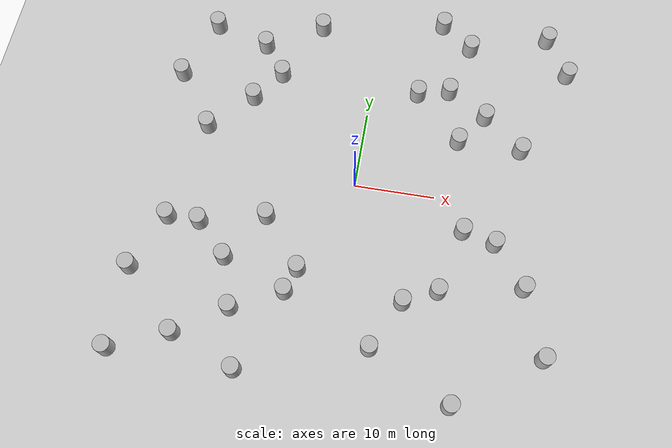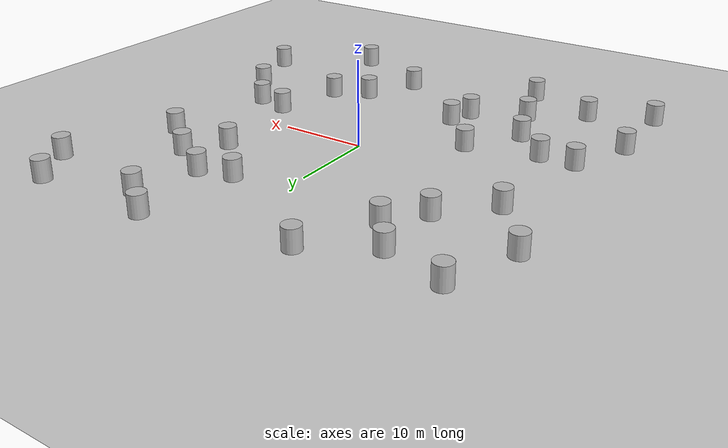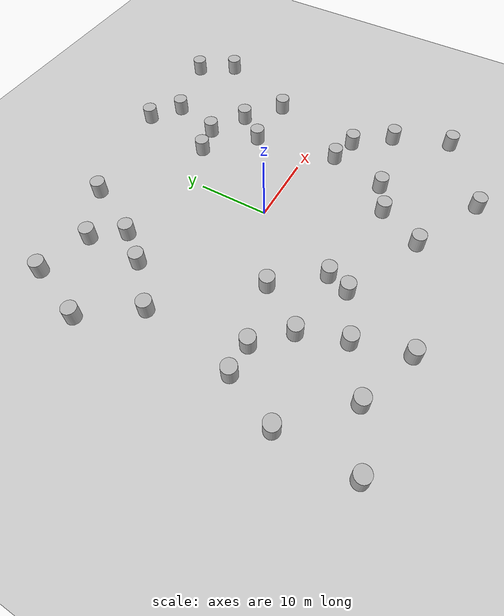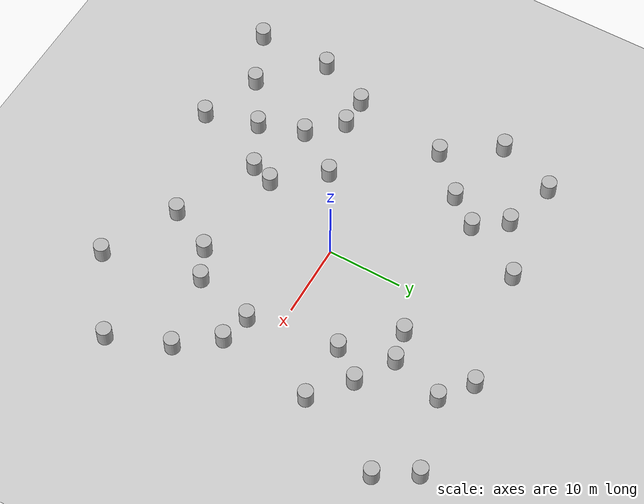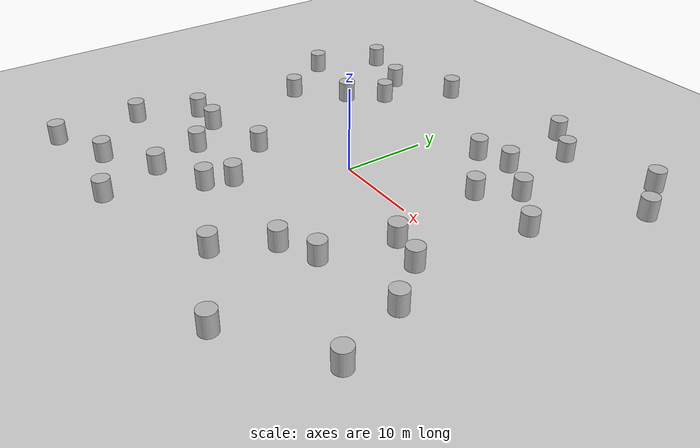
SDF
<?xml version='1.0'?>
<sdf version='1.9'>
  <world name='larger_cylinders'>
    <model name="ground_plane">
      <static>true</static>
      <link name="ground_plane_link">
        <collision name="collision">
          <geometry>
            <plane>
              <normal>0 0 1</normal>
              <size>60 60</size>
            </plane>
          </geometry>
        </collision>
        <visual name="visual">
          <geometry>
            <plane>
              <normal>0 0 1</normal>
              <size>60 60</size>
            </plane>
          </geometry>
          <material>
            <ambient>0.8 0.8 0.8 1</ambient>
            <diffuse>0.8 0.8 0.8 1</diffuse>
            <specular>0.1 0.1 0.1 1</specular>
            <emissive>0 0 0 1</emissive>
          </material>
        </visual>
      </link>
    </model>

    <physics name="dart_physics" type="dart">
      <max_step_size>0.002</max_step_size>
      <real_time_update_rate>500</real_time_update_rate>
      <thread_count>12</thread_count>     <!-- sweet spot for 14900HX -->
    </physics>

    <plugin
      filename="gz-sim-scene-broadcaster-system"
      name="gz::sim::systems::SceneBroadcaster">
      <publish_rate>10</publish_rate>
    </plugin>

    <plugin
      filename="gz-sim-user-commands-system"
      name="gz::sim::systems::UserCommands">
    </plugin>

    <plugin
      filename="gz-sim-physics-system"
      name="gz::sim::systems::Physics">
    </plugin>

    <plugin
      filename="gz-sim-sensors-system"
      name="gz::sim::systems::Sensors">
      <render_engine>ogre2</render_engine>
    </plugin>

    <plugin
      filename="gz-sim-imu-system"
      name="gz::sim::systems::Imu">
    </plugin>

    <plugin filename="ignition-gazebo-navsat-system" name="ignition::gazebo::systems::NavSat"/>

    <spherical_coordinates>
        <surface_model>EARTH_WGS84</surface_model>
        <world_frame_orientation>ENU</world_frame_orientation>
        <latitude_deg>-33.805</latitude_deg>
        <longitude_deg>150.8691389</longitude_deg>
        <elevation>0</elevation>
        <heading_deg>0</heading_deg>
    </spherical_coordinates>

    <!-- Larger Cylinders -->
    <!-- radius=1.0, length=2.5, total 25 -->
    <!-- Example positions spread across the map -->
    <!-- Example positions spread across the map -->
    <model name='cylinder_0'><pose>10 15 1.25 0 0 0</pose><link name='link'><collision name='collision'><geometry><cylinder><radius>1.0</radius><length>2.5</length></cylinder></geometry></collision><visual name='visual'><geometry><cylinder><radius>1.0</radius><length>2.5</length></cylinder></geometry></visual></link></model>
    <model name='cylinder_1'><pose>-12 -18 1.25 0 0 0</pose><link name='link'><collision name='collision'><geometry><cylinder><radius>1.0</radius><length>2.5</length></cylinder></geometry></collision><visual name='visual'><geometry><cylinder><radius>1.0</radius><length>2.5</length></cylinder></geometry></visual></link></model>
    <model name='cylinder_2'><pose>-20 5 1.25 0 0 0</pose><link name='link'><collision name='collision'><geometry><cylinder><radius>1.0</radius><length>2.5</length></cylinder></geometry></collision><visual name='visual'><geometry><cylinder><radius>1.0</radius><length>2.5</length></cylinder></geometry></visual></link></model>
    <model name='cylinder_3'><pose>22 -10 1.25 0 0 0</pose><link name='link'><collision name='collision'><geometry><cylinder><radius>1.0</radius><length>2.5</length></cylinder></geometry></collision><visual name='visual'><geometry><cylinder><radius>1.0</radius><length>2.5</length></cylinder></geometry></visual></link></model>
    <model name='cylinder_4'><pose>-8 22 1.25 0 0 0</pose><link name='link'><collision name='collision'><geometry><cylinder><radius>1.0</radius><length>2.5</length></cylinder></geometry></collision><visual name='visual'><geometry><cylinder><radius>1.0</radius><length>2.5</length></cylinder></geometry></visual></link></model>
    <model name='cylinder_5'><pose>15 -25 1.25 0 0 0</pose><link name='link'><collision name='collision'><geometry><cylinder><radius>1.0</radius><length>2.5</length></cylinder></geometry></collision><visual name='visual'><geometry><cylinder><radius>1.0</radius><length>2.5</length></cylinder></geometry></visual></link></model>
    <model name='cylinder_6'><pose>-25 -15 1.25 0 0 0</pose><link name='link'><collision name='collision'><geometry><cylinder><radius>1.0</radius><length>2.5</length></cylinder></geometry></collision><visual name='visual'><geometry><cylinder><radius>1.0</radius><length>2.5</length></cylinder></geometry></visual></link></model>
    <model name='cylinder_7'><pose>25 20 1.25 0 0 0</pose><link name='link'><collision name='collision'><geometry><cylinder><radius>1.0</radius><length>2.5</length></cylinder></geometry></collision><visual name='visual'><geometry><cylinder><radius>1.0</radius><length>2.5</length></cylinder></geometry></visual></link></model>
    <model name='cylinder_8'><pose>-22 -8 1.25 0 0 0</pose><link name='link'><collision name='collision'><geometry><cylinder><radius>1.0</radius><length>2.5</length></cylinder></geometry></collision><visual name='visual'><geometry><cylinder><radius>1.0</radius><length>2.5</length></cylinder></geometry></visual></link></model>
    <model name='cylinder_9'><pose>5 -20 1.25 0 0 0</pose><link name='link'><collision name='collision'><geometry><cylinder><radius>1.0</radius><length>2.5</length></cylinder></geometry></collision><visual name='visual'><geometry><cylinder><radius>1.0</radius><length>2.5</length></cylinder></geometry></visual></link></model>
    <model name='cylinder_10'><pose>-15 18 1.25 0 0 0</pose><link name='link'><collision name='collision'><geometry><cylinder><radius>1.0</radius><length>2.5</length></cylinder></geometry></collision><visual name='visual'><geometry><cylinder><radius>1.0</radius><length>2.5</length></cylinder></geometry></visual></link></model>
    <model name='cylinder_11'><pose>12 -12 1.25 0 0 0</pose><link name='link'><collision name='collision'><geometry><cylinder><radius>1.0</radius><length>2.5</length></cylinder></geometry></collision><visual name='visual'><geometry><cylinder><radius>1.0</radius><length>2.5</length></cylinder></geometry></visual></link></model>
    <model name='cylinder_12'><pose>-18 -22 1.25 0 0 0</pose><link name='link'><collision name='collision'><geometry><cylinder><radius>1.0</radius><length>2.5</length></cylinder></geometry></collision><visual name='visual'><geometry><cylinder><radius>1.0</radius><length>2.5</length></cylinder></geometry></visual></link></model>
    <model name='cylinder_13'><pose>20 8 1.25 0 0 0</pose><link name='link'><collision name='collision'><geometry><cylinder><radius>1.0</radius><length>2.5</length></cylinder></geometry></collision><visual name='visual'><geometry><cylinder><radius>1.0</radius><length>2.5</length></cylinder></geometry></visual></link></model>
    <model name='cylinder_14'><pose>-10 -25 1.25 0 0 0</pose><link name='link'><collision name='collision'><geometry><cylinder><radius>1.0</radius><length>2.5</length></cylinder></geometry></collision><visual name='visual'><geometry><cylinder><radius>1.0</radius><length>2.5</length></cylinder></geometry></visual></link></model>
    <model name='cylinder_15'><pose>8 25 1.25 0 0 0</pose><link name='link'><collision name='collision'><geometry><cylinder><radius>1.0</radius><length>2.5</length></cylinder></geometry></collision><visual name='visual'><geometry><cylinder><radius>1.0</radius><length>2.5</length></cylinder></geometry></visual></link></model>
    <model name='cylinder_16'><pose>-25 12 1.25 0 0 0</pose><link name='link'><collision name='collision'><geometry><cylinder><radius>1.0</radius><length>2.5</length></cylinder></geometry></collision><visual name='visual'><geometry><cylinder><radius>1.0</radius><length>2.5</length></cylinder></geometry></visual></link></model>
    <model name='cylinder_17'><pose>18 -5 1.25 0 0 0</pose><link name='link'><collision name='collision'><geometry><cylinder><radius>1.0</radius><length>2.5</length></cylinder></geometry></collision><visual name='visual'><geometry><cylinder><radius>1.0</radius><length>2.5</length></cylinder></geometry></visual></link></model>
    <model name='cylinder_18'><pose>-22 20 1.25 0 0 0</pose><link name='link'><collision name='collision'><geometry><cylinder><radius>1.0</radius><length>2.5</length></cylinder></geometry></collision><visual name='visual'><geometry><cylinder><radius>1.0</radius><length>2.5</length></cylinder></geometry></visual></link></model>
    <model name='cylinder_19'><pose>25 -18 1.25 0 0 0</pose><link name='link'><collision name='collision'><geometry><cylinder><radius>1.0</radius><length>2.5</length></cylinder></geometry></collision><visual name='visual'><geometry><cylinder><radius>1.0</radius><length>2.5</length></cylinder></geometry></visual></link></model>
    <model name='cylinder_20'><pose>-5 -12 1.25 0 0 0</pose><link name='link'><collision name='collision'><geometry><cylinder><radius>1.0</radius><length>2.5</length></cylinder></geometry></collision><visual name='visual'><geometry><cylinder><radius>1.0</radius><length>2.5</length></cylinder></geometry></visual></link></model>
    <model name='cylinder_21'><pose>12 22 1.25 0 0 0</pose><link name='link'><collision name='collision'><geometry><cylinder><radius>1.0</radius><length>2.5</length></cylinder></geometry></collision><visual name='visual'><geometry><cylinder><radius>1.0</radius><length>2.5</length></cylinder></geometry></visual></link></model>
    <model name='cylinder_22'><pose>-18 -8 1.25 0 0 0</pose><link name='link'><collision name='collision'><geometry><cylinder><radius>1.0</radius><length>2.5</length></cylinder></geometry></collision><visual name='visual'><geometry><cylinder><radius>1.0</radius><length>2.5</length></cylinder></geometry></visual></link></model>
    <model name='cylinder_23'><pose>22 25 1.25 0 0 0</pose><link name='link'><collision name='collision'><geometry><cylinder><radius>1.0</radius><length>2.5</length></cylinder></geometry></collision><visual name='visual'><geometry><cylinder><radius>1.0</radius><length>2.5</length></cylinder></geometry></visual></link></model>
    <model name='cylinder_24'><pose>-25 -25 1.25 0 0 0</pose><link name='link'><collision name='collision'><geometry><cylinder><radius>1.0</radius><length>2.5</length></cylinder></geometry></collision><visual name='visual'><geometry><cylinder><radius>1.0</radius><length>2.5</length></cylinder></geometry></visual></link></model>
        <!-- Additional 10 cylinders closer to the centre -->
       <!-- Additional 10 cylinders, spread closer to the centre but not too clustered -->
    <model name='cylinder_25'><pose>12 8 1.25 0 0 0</pose><link name='link'><collision name='collision'><geometry><cylinder><radius>1.0</radius><length>2.5</length></cylinder></geometry></collision><visual name='visual'><geometry><cylinder><radius>1.0</radius><length>2.5</length></cylinder></geometry></visual></link></model>
    <model name='cylinder_26'><pose>-10 -6 1.25 0 0 0</pose><link name='link'><collision name='collision'><geometry><cylinder><radius>1.0</radius><length>2.5</length></cylinder></geometry></collision><visual name='visual'><geometry><cylinder><radius>1.0</radius><length>2.5</length></cylinder></geometry></visual></link></model>
    <model name='cylinder_27'><pose>14 -4 1.25 0 0 0</pose><link name='link'><collision name='collision'><geometry><cylinder><radius>1.0</radius><length>2.5</length></cylinder></geometry></collision><visual name='visual'><geometry><cylinder><radius>1.0</radius><length>2.5</length></cylinder></geometry></visual></link></model>
    <model name='cylinder_28'><pose>-15 10 1.25 0 0 0</pose><link name='link'><collision name='collision'><geometry><cylinder><radius>1.0</radius><length>2.5</length></cylinder></geometry></collision><visual name='visual'><geometry><cylinder><radius>1.0</radius><length>2.5</length></cylinder></geometry></visual></link></model>
    <model name='cylinder_29'><pose>8 -14 1.25 0 0 0</pose><link name='link'><collision name='collision'><geometry><cylinder><radius>1.0</radius><length>2.5</length></cylinder></geometry></collision><visual name='visual'><geometry><cylinder><radius>1.0</radius><length>2.5</length></cylinder></geometry></visual></link></model>
    <model name='cylinder_30'><pose>-12 14 1.25 0 0 0</pose><link name='link'><collision name='collision'><geometry><cylinder><radius>1.0</radius><length>2.5</length></cylinder></geometry></collision><visual name='visual'><geometry><cylinder><radius>1.0</radius><length>2.5</length></cylinder></geometry></visual></link></model>
    <model name='cylinder_31'><pose>15 12 1.25 0 0 0</pose><link name='link'><collision name='collision'><geometry><cylinder><radius>1.0</radius><length>2.5</length></cylinder></geometry></collision><visual name='visual'><geometry><cylinder><radius>1.0</radius><length>2.5</length></cylinder></geometry></visual></link></model>
    <model name='cylinder_32'><pose>-14 -12 1.25 0 0 0</pose><link name='link'><collision name='collision'><geometry><cylinder><radius>1.0</radius><length>2.5</length></cylinder></geometry></collision><visual name='visual'><geometry><cylinder><radius>1.0</radius><length>2.5</length></cylinder></geometry></visual></link></model>
    <model name='cylinder_33'><pose>6 14 1.25 0 0 0</pose><link name='link'><collision name='collision'><geometry><cylinder><radius>1.0</radius><length>2.5</length></cylinder></geometry></collision><visual name='visual'><geometry><cylinder><radius>1.0</radius><length>2.5</length></cylinder></geometry></visual></link></model>
    <model name='cylinder_34'><pose>-6 -15 1.25 0 0 0</pose><link name='link'><collision name='collision'><geometry><cylinder><radius>1.0</radius><length>2.5</length></cylinder></geometry></collision><visual name='visual'><geometry><cylinder><radius>1.0</radius><length>2.5</length></cylinder></geometry></visual></link></model>

    <light name='sun' type='directional'>
      <pose>0 0 10 0 0 0</pose>
      <cast_shadows>true</cast_shadows>
    </light>
  </world>
</sdf>
